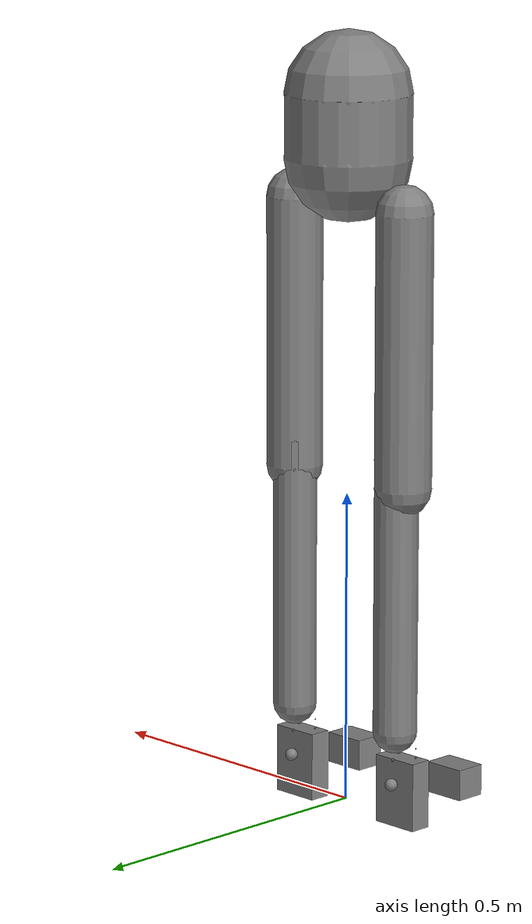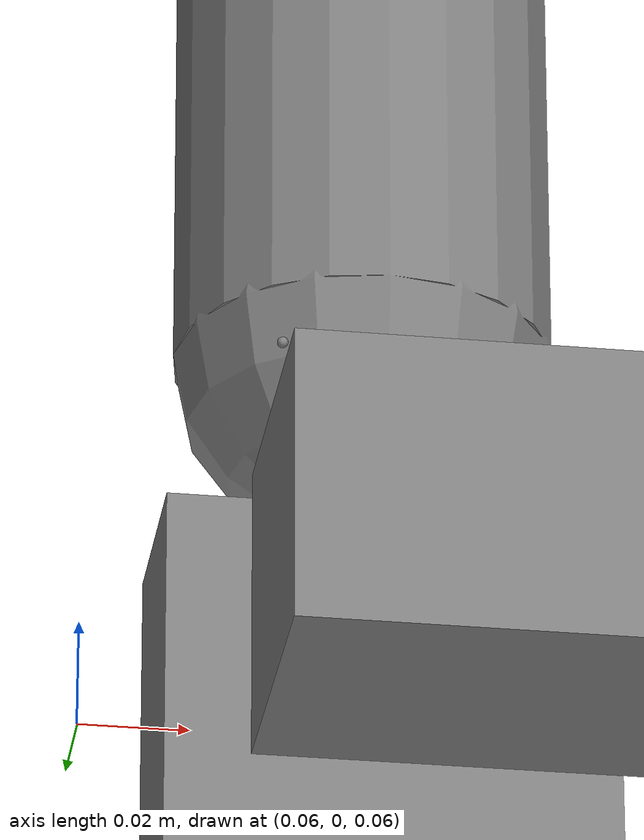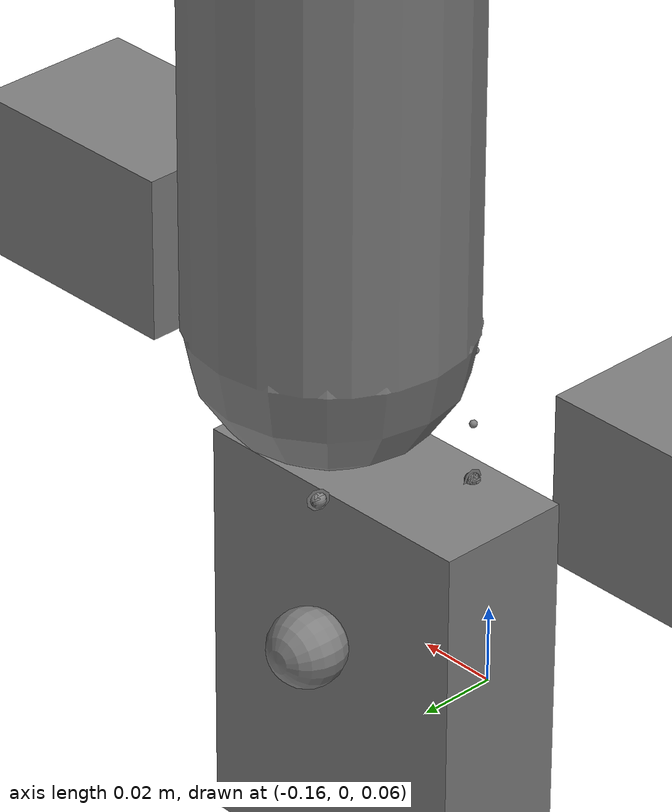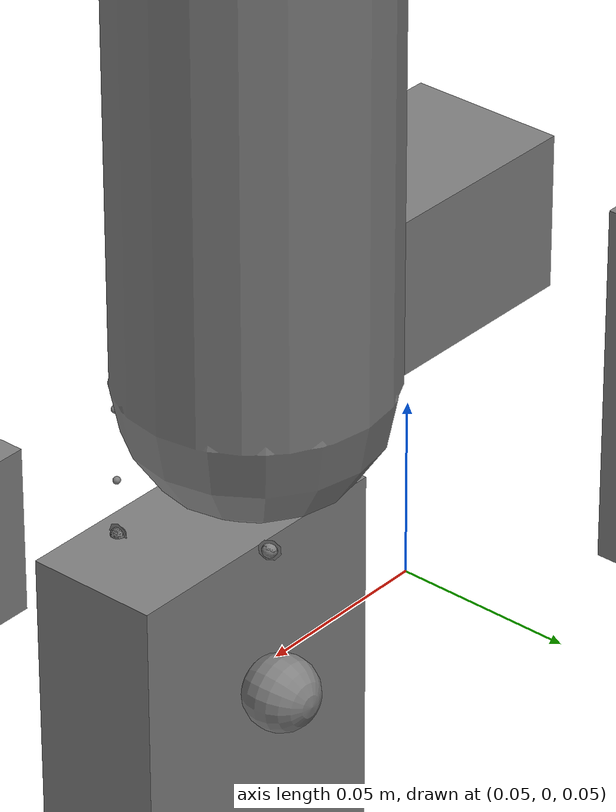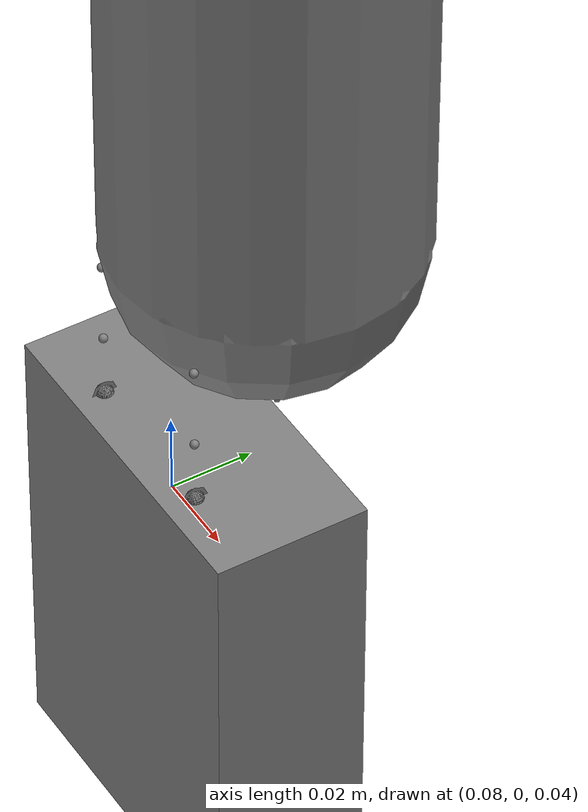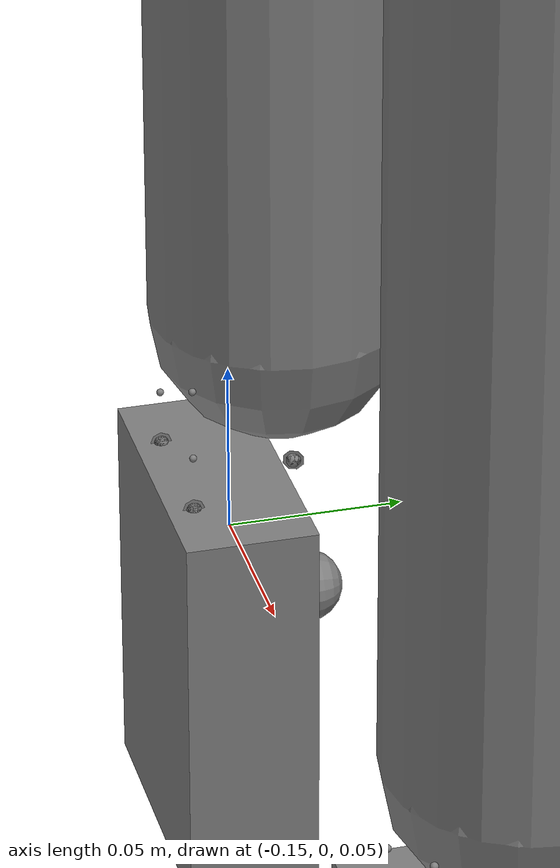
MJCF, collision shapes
<?xml version='1.0' encoding='utf-8'?>
<mujoco model="assets">
  <compiler angle="radian" />
  <!-- === Parameters === -->
  <include file="params/default_classes.xml" />
  <include file="params/materials.xml" />
  <!-- === Geometry === -->
  <include file="geometry/meshes.xml" />
  <!-- Note: world.xml removed - Isaac Lab creates ground in scene config -->
  <include file="geometry/robot.xml" />
  <!-- === Constraints === -->
  <include file="equality.xml" />
  <include file="tendon.xml" />
  <!-- === Modules === -->
  <include file="actuators.xml" />
  <include file="sensors.xml" />
  <include file="contact_exclude.xml" />
</mujoco>

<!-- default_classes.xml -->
<mujoco>
  <!-- Default classes -->
  <visual>
    <quality shadowsize="4096" />
  </visual>

  <default>
    <default class="robot">
      <default class="motor">
        <!-- 主要运动关节：hip, knee -->
        <joint damping="0.5" armature="0.01" frictionloss="0.1"
          solreflimit="0.005 1" solimplimit="0.95 0.99 0.001" />
        <motor ctrllimited="true" ctrlrange="-1 1" />
      </default>
      <default class="ankle_motor">
        <!-- Three DOF 并联结构 -->
        <!-- 踝关节由 tendon 约束 -->
        <joint />
        <motor />
      </default>
      <default class="toe_motor">
        <!-- 脚趾关节：中等阻尼 -->
        <joint damping="0.2" armature="0.005" frictionloss="0.05"
          solreflimit="0.005 1" solimplimit="0.95 0.99 0.001" />
        <motor ctrllimited="true" ctrlrange="-1 1" />
      </default>
      <default class="visual">
        <!-- 视觉几何：不参与碰撞 -->
        <geom contype="0" conaffinity="0" group="2" />
      </default>
      <default class="collision">
        <!-- 躯干/髋部碰撞：组8，只碰撞地面(1) -->
        <geom condim="3" contype="8" conaffinity="1" priority="1" group="1" solref="0.005 1"
          solimp="0.99 0.999 1e-05" friction="1 0.01 0.01" mass="0" />
      </default>
      <default class="right_leg_collision">
        <!-- 右腿主体碰撞：组2，碰撞地面(1)和左腿(4) -->
        <geom condim="3" contype="2" conaffinity="5" priority="1" group="1" solref="0.005 1"
          solimp="0.99 0.999 1e-05" friction="1 0.01 0.01" mass="0" />
      </default>
      <default class="left_leg_collision">
        <!-- 左腿主体碰撞：组4，碰撞地面(1)和右腿(2) -->
        <geom condim="3" contype="4" conaffinity="3" priority="1" group="1" solref="0.005 1"
          solimp="0.99 0.999 1e-05" friction="1 0.01 0.01" mass="0" />
      </default>
      <default class="right_leg_minor_collision">
        <!-- 右腿细小部件（ankle）：组16，只碰撞地面(1) -->
        <geom condim="3" contype="16" conaffinity="1" priority="1" group="1" solref="0.005 1"
          solimp="0.99 0.999 1e-05" friction="1 0.01 0.01" mass="0" />
      </default>
      <default class="left_leg_minor_collision">
        <!-- 左腿细小部件（ankle）：组32，只碰撞地面(1) -->
        <geom condim="3" contype="32" conaffinity="1" priority="1" group="1" solref="0.005 1"
          solimp="0.99 0.999 1e-05" friction="1 0.01 0.01" mass="0" />
      </default>
      <default class="thigh_equality">
        <equality solref="0.001 1" solimp="0.99 0.999 0.0001" />
      </default>
    </default>
  </default>
</mujoco>

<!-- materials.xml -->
<mujoco>
  <!-- Materials -->
  <asset>
    <material name="ground" rgba="1 1 1 1" />
    <material name="default_material" rgba="0.7 0.7 0.7 1" />
    <material name="collision_material" rgba="1.0 0.28 0.1 0.9" />
  </asset>
</mujoco>

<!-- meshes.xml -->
<mujoco>
  <!-- Mesh assets extracted from jiyuan_fit.xml -->
  <asset>
    <mesh name="base_link.STL" file="../../../../meshes/base_link.STL" />
    <mesh name="right_hip_pitch_engine_link.STL" file="../../../../meshes/right_hip_pitch_engine_link.STL" />
    <mesh name="right_hip_yaw_engine_link.STL" file="../../../../meshes/right_hip_yaw_engine_link.STL" />
    <mesh name="right_hip_roll_link.STL" file="../../../../meshes/right_hip_roll_link.STL" />
    <mesh name="right_hip_cube_link.STL" file="../../../../meshes/right_hip_cube_link.STL" />
    <mesh name="right_thigh_link.STL" file="../../../../meshes/right_thigh_link.STL" />
    <mesh name="right_shin_link.STL" file="../../../../meshes/right_shin_link.STL" />
    <mesh name="right_ankle_1_3_link.STL" file="../../../../meshes/right_ankle_1_3_link.STL" />
    <mesh name="right_ankle_1_3_cube_link.STL" file="../../../../meshes/right_ankle_1_3_cube_link.STL" />
    <mesh name="right_ankle_1_3_page_link.STL" file="../../../../meshes/right_ankle_1_3_page_link.STL" />
    <mesh name="right_ankle_2_3_link.STL" file="../../../../meshes/right_ankle_2_3_link.STL" />
    <mesh name="right_ankle_2_3_cube_link.STL" file="../../../../meshes/right_ankle_2_3_cube_link.STL" />
    <mesh name="right_ankle_2_3_page_link.STL" file="../../../../meshes/right_ankle_2_3_page_link.STL" />
    <mesh name="right_ankle_3_3_link.STL" file="../../../../meshes/right_ankle_3_3_link.STL" />
    <mesh name="right_ankle_3_3_cube_link.STL" file="../../../../meshes/right_ankle_3_3_cube_link.STL" />
    <mesh name="right_ankle_3_3_page_link.STL" file="../../../../meshes/right_ankle_3_3_page_link.STL" />
    <mesh name="right_ankle_cube_link.STL" file="../../../../meshes/right_ankle_cube_link.STL" />
    <mesh name="right_ankle_axle_link.STL" file="../../../../meshes/right_ankle_axle_link.STL" />
    <mesh name="right_foot_link.STL" file="../../../../meshes/right_foot_link.STL" />
    <mesh name="right_toe_link.STL" file="../../../../meshes/right_toe_link.STL" />
    <mesh name="left_hip_pitch_engine_link.STL" file="../../../../meshes/left_hip_pitch_engine_link.STL" />
    <mesh name="left_hip_yaw_engine_link.STL" file="../../../../meshes/left_hip_yaw_engine_link.STL" />
    <mesh name="left_hip_roll_link.STL" file="../../../../meshes/left_hip_roll_link.STL" />
    <mesh name="left_hip_cube_link.STL" file="../../../../meshes/left_hip_cube_link.STL" />
    <mesh name="left_thigh_link.STL" file="../../../../meshes/left_thigh_link.STL" />
    <mesh name="left_shin_link.STL" file="../../../../meshes/left_shin_link.STL" />
    <mesh name="left_ankle_1_3_link.STL" file="../../../../meshes/left_ankle_1_3_link.STL" />
    <mesh name="left_ankle_1_3_cube_link.STL" file="../../../../meshes/left_ankle_1_3_cube_link.STL" />
    <mesh name="left_ankle_1_3_page_link.STL" file="../../../../meshes/left_ankle_1_3_page_link.STL" />
    <mesh name="left_ankle_2_3_link.STL" file="../../../../meshes/left_ankle_2_3_link.STL" />
    <mesh name="left_ankle_2_3_cube_link.STL" file="../../../../meshes/left_ankle_2_3_cube_link.STL" />
    <mesh name="left_ankle_2_3_page_link.STL" file="../../../../meshes/left_ankle_2_3_page_link.STL" />
    <mesh name="left_ankle_3_3_link.STL" file="../../../../meshes/left_ankle_3_3_link.STL" />
    <mesh name="left_ankle_3_3_cube_link.STL" file="../../../../meshes/left_ankle_3_3_cube_link.STL" />
    <mesh name="left_ankle_3_3_page_link.STL" file="../../../../meshes/left_ankle_3_3_page_link.STL" />
    <mesh name="left_ankle_cube_link.STL" file="../../../../meshes/left_ankle_cube_link.STL" />
    <mesh name="left_ankle_axle_link.STL" file="../../../../meshes/left_ankle_axle_link.STL" />
    <mesh name="left_foot_link.STL" file="../../../../meshes/left_foot_link.STL" />
    <mesh name="left_toe_link.STL" file="../../../../meshes/left_toe_link.STL" />

    <!-- Custom Collision Meshes -->
    <mesh name="toe_wedge" vertex="
      -0.035  0.025 -0.025
       0.035  0.025 -0.025
      -0.035  0.025  0.025
       0.035  0.025  0.025
      -0.035 -0.025 -0.025
       0.035 -0.025 -0.025
      -0.035 -0.025 -0.015
       0.035 -0.025 -0.015" />

    <mesh name="foot_wedge" vertex="
        -0.028  0.030 -0.048
         0.028  0.030 -0.048
        -0.028  0.030  0.064
         0.028  0.030  0.064
        -0.028 -0.030  0.064
         0.028 -0.030  0.064
        -0.028 -0.090 -0.028
         0.028 -0.090 -0.028
        -0.028 -0.090 -0.048
         0.028 -0.090 -0.048" />
  </asset>
</mujoco>

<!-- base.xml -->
<mujoco>
  <geom name="base_link_collision" type="capsule" fromto="0 0.04 0 0 0.14 0" size="0.10"
    class="collision" />
  <geom name="base_link_visual" pos="0 0 0" quat="1.0 0.0 0.0 0.0" type="mesh" mesh="base_link.STL"
    class="visual" />
  <site name="base_link_site" pos="0 0 0" quat="1 0 0 0" />
  <camera name="front_camera" mode="track" fovy="90.0"
    quat="4.329780281177467e-17 4.329780281177466e-17 0.7071067811865475 0.7071067811865476"
    pos="0.0 2.0 0.5" />
  <camera name="side_camera" mode="track" fovy="90.0"
    quat="-0.5 -0.4999999999999999 0.5 0.5000000000000001" pos="-2.0 0.0 0.5" />
</mujoco>

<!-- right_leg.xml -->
<mujoco>
  <body name="right_hip_pitch_engine_link" pos="-0.084333 2.46E-05 0" quat="1.0 0.0 0.0 0.0">
    <joint name="right_hip_pitch_engine_joint" type="hinge" ref="0.0" class="motor" range="-1.0 1.5"
      axis="0 0 1" />
    <inertial pos="-0.0132180319673854 -0.000409478998264526 -0.000337079988808422"
      quat="1.0 0.0 0.0 0.0" mass="0.00784384827917925"
      diaginertia="4.36590682410741e-06 5.12008779916659e-06 1.36310392622543e-06" />
    <geom name="right_hip_pitch_engine_link_collision" pos="0 0 0" quat="1.0 0.0 0.0 0.0"
      type="sphere" class="right_leg_minor_collision" size="0.001" contype="0" conaffinity="0" />
    <geom name="right_hip_pitch_engine_link_visual" pos="0 0 0" quat="1.0 0.0 0.0 0.0" type="mesh"
      mesh="right_hip_pitch_engine_link.STL" class="visual" />
  </body>
  <body name="right_hip_yaw_engine_link" pos="-0.084333 2.46E-05 0" quat="1.0 0.0 0.0 0.0">
    <joint name="right_hip_yaw_engine_joint" type="hinge" ref="0.0" class="motor" range="-1.0 1.0"
      axis="0 1 0" />
    <inertial pos="-0.00975037082028439 0.000335610218016511 0.000145803243278274"
      quat="1.0 0.0 0.0 0.0" mass="0.00721229273746498"
      diaginertia="3.40368793351683e-06 9.55584405344269e-07 3.82715081231712e-06" />
    <geom name="right_hip_yaw_engine_link_collision" pos="0 0 0" quat="1.0 0.0 0.0 0.0"
      type="sphere" class="right_leg_minor_collision" size="0.001" contype="0" conaffinity="0" />
    <geom name="right_hip_yaw_engine_link_visual" pos="0 0 0" quat="1.0 0.0 0.0 0.0" type="mesh"
      mesh="right_hip_yaw_engine_link.STL" class="visual" />
  </body>
  <body name="right_hip_roll_link" pos="-0.084333 2.46E-05 0" quat="1.0 0.0 0.0 0.0">
    <joint name="right_hip_roll_joint" type="hinge" ref="0.0" class="motor"
      range="-1.5707963267948966 1.5707963267948966" axis="1 0 0" />
    <inertial pos="0.0222625122554699 -4.28350421400515E-05 -2.24420624569832E-05"
      quat="1.0 0.0 0.0 0.0" mass="0.00398432706561057"
      diaginertia="1.88235287338231e-07 5.49391206748978e-07 5.05938324031621e-07" />
    <geom name="right_hip_roll_link_collision" pos="0 0 0" quat="1.0 0.0 0.0 0.0" type="sphere"
      class="right_leg_minor_collision" size="0.001" contype="0" conaffinity="0" />
    <geom name="right_hip_roll_link_visual" pos="0 0 0" quat="1.0 0.0 0.0 0.0" type="mesh"
      mesh="right_hip_roll_link.STL" class="visual" />
    <body name="right_hip_cube_link" pos="0 0 0" quat="1.0 0.0 0.0 0.0">
      <joint name="right_hip_cube_joint" type="hinge" ref="0.0" class="motor" range="-1.0 1.5"
        axis="0 0 1" />
      <inertial pos="-7.58236988473993E-09 -8.10037224742346E-14 8.6035271838651E-15"
        quat="1.0 0.0 0.0 0.0" mass="0.000245876972106248"
        diaginertia="4.25015788197772e-09 2.40441818298092e-09 2.40441192528711e-09" />
      <geom name="right_hip_cube_link_collision" pos="0 0 0" quat="1.0 0.0 0.0 0.0" type="sphere"
        class="right_leg_minor_collision" size="0.001" contype="0" conaffinity="0" />
      <geom name="right_hip_cube_link_visual" pos="0 0 0" quat="1.0 0.0 0.0 0.0" type="mesh"
        mesh="right_hip_cube_link.STL" class="visual" />
      <body name="right_thigh_link" pos="0 0 0" quat="1.0 0.0 0.0 0.0">
        <joint name="right_thigh_joint" type="hinge" ref="0.0" class="motor" range="-1.0 1.0"
          axis="0 1 0" />
        <inertial pos="-0.0353507257648988 -0.247894844440165 0.00178440950269929"
          quat="1.0 0.0 0.0 0.0" mass="0.807844023825405"
          diaginertia="0.00262872199337436 0.00181775503594599 0.00258154933740886" />
        <geom name="right_thigh_link_collision" pos="-0.035 -0.248 0.002" quat="0.7071 0.7071 0 0"
          type="capsule" class="right_leg_collision" size="0.045 0.215" />
        <geom name="right_thigh_link_visual" pos="0 0 0" quat="1.0 0.0 0.0 0.0" type="mesh"
          mesh="right_thigh_link.STL" class="visual" />
        <body name="right_shin_link" pos="-0.0324938548812839 -0.429595785329822 -0.011499999999998"
          quat="1.0 0.0 0.0 0.0">
          <joint name="right_knee_joint" type="hinge" ref="0.0" class="motor"
            range="-2.0943951023931953 0.0" axis="-1 0 0" />
          <inertial pos="0.00524376700949104 -0.205627168869245 0.00732812606870403"
            quat="1.0 0.0 0.0 0.0" mass="0.364323955321575"
            diaginertia="0.00132460554133456 0.000315850437296788 0.00134334443677415" />
          <geom name="right_shin_link_collision" pos="0.005 -0.206 0.007" quat="0.7071 0.7071 0 0"
            type="capsule" class="right_leg_collision" size="0.035 0.218" />
          <geom name="right_shin_link_visual" pos="0 0 0" quat="1.0 0.0 0.0 0.0" type="mesh"
            mesh="right_shin_link.STL" class="visual" />
          <body name="right_ankle_1_3_link"
            pos="0.00499998365963887 -0.435500013525673 0.00299999395255281" quat="1.0 0.0 0.0 0.0">
            <joint name="right_ankle_1_3_joint" type="hinge" ref="0.0" class="ankle_motor"
              range="-0.5235987755982988 0.5235987755982988" axis="0 0 1" />
            <inertial pos="-6.03425108214317E-08 -0.00133748853041993 0.000181477957767302"
              quat="1.0 0.0 0.0 0.0" mass="0.00262097004680966"
              diaginertia="8.99652249736952e-08 9.24849140747278e-08 1.40840739837435e-07" />
            <geom name="right_ankle_1_3_link_collision" pos="0 0 0" quat="1.0 0.0 0.0 0.0"
              type="sphere" class="right_leg_minor_collision" size="0.001" contype="0"
              conaffinity="0" />
            <geom name="right_ankle_1_3_link_visual" pos="0 0 0" quat="1.0 0.0 0.0 0.0" type="mesh"
              mesh="right_ankle_1_3_link.STL" class="visual" />
            <body name="right_ankle_1_3_cube_link" pos="0 0 0" quat="1.0 0.0 0.0 0.0">
              <joint name="right_ankle_1_3_cube_joint" type="hinge" ref="0.0" class="ankle_motor"
                range="-0.5235987755982988 0.5235987755982988" axis="0 -1 0" />
              <inertial pos="1.63396522423476E-08 -0.0170076971502238 1.27962296526257E-07"
                quat="1.0 0.0 0.0 0.0" mass="0.00141938195347877"
                diaginertia="2.85047557512365e-08 3.24387028605849e-08 3.91865632006432e-08" />
              <geom name="right_ankle_1_3_cube_link_collision" pos="0 0 0" quat="1.0 0.0 0.0 0.0"
                type="sphere" class="right_leg_minor_collision" size="0.001" contype="0"
                conaffinity="0" />
              <geom name="right_ankle_1_3_cube_link_visual" pos="0 0 0" quat="1.0 0.0 0.0 0.0"
                type="mesh" mesh="right_ankle_1_3_cube_link.STL" class="visual" />
              <body name="right_ankle_1_3_page_link" pos="0 -0.0199999864743267 0"
                quat="1.0 0.0 0.0 0.0">
                <site name="ankle_1_3_attach" pos="0 -0.0155 0" size="0.002" />
                <joint name="right_ankle_1_3_page_joint" type="hinge" ref="0.0" class="ankle_motor"
                  range="-0.5235987755982988 0.5235987755982988" axis="-1 0 0" />
                <inertial pos="-0.000120807831869477 -0.0207078096816944 4.90926743701436E-16"
                  quat="1.0 0.0 0.0 0.0" mass="0.00310095806973402"
                  diaginertia="6.607387135913e-07 1.0799072162633e-07 6.98721337032829e-07" />
                <geom name="right_ankle_1_3_page_link_collision" pos="0 0 0" quat="1.0 0.0 0.0 0.0"
                  type="sphere" class="right_leg_minor_collision" size="0.001" contype="0"
                  conaffinity="0" />
                <geom name="right_ankle_1_3_page_link_visual" pos="0 0 0" quat="1.0 0.0 0.0 0.0"
                  type="mesh" mesh="right_ankle_1_3_page_link.STL" class="visual" />
              </body>
            </body>
          </body>
          <body name="right_ankle_2_3_link"
            pos="-0.0136195625217264 -0.435500013525674 0.0352499939525529"
            quat="0.49999999999999667 5.913303551884552e-16 0.8660254037844406 5.913303551884552e-16">
            <joint name="right_ankle_2_3_joint" type="hinge" ref="0.0" class="ankle_motor"
              range="-0.5235987755982988 0.5235987755982988" axis="0 0 1" />
            <inertial pos="-9.00902660042058E-08 -0.00133748853041982 0.000181483037757071"
              quat="1.0 0.0 0.0 0.0" mass="0.00262097004680966"
              diaginertia="8.99652249736953e-08 9.24849140747277e-08 1.40840739837435e-07" />
            <geom name="right_ankle_2_3_link_collision" pos="0 0 0" quat="1.0 0.0 0.0 0.0"
              type="sphere" class="right_leg_minor_collision" size="0.001" contype="0"
              conaffinity="0" />
            <geom name="right_ankle_2_3_link_visual" pos="0 0 0" quat="1.0 0.0 0.0 0.0" type="mesh"
              mesh="right_ankle_2_3_link.STL" class="visual" />
            <body name="right_ankle_2_3_cube_link" pos="0 0 0" quat="1.0 0.0 0.0 0.0">
              <joint name="right_ankle_2_3_cube_joint" type="hinge" ref="0.0" class="ankle_motor"
                range="-0.5235987755982988 0.5235987755982988" axis="0 -1 0" />
              <inertial pos="-1.3408035869078E-08 -0.0170076970709049 1.33042210040402E-07"
                quat="1.0 0.0 0.0 0.0" mass="0.00141938194566218"
                diaginertia="2.85047550653728e-08 3.24387030714843e-08 3.91865625370975e-08" />
              <geom name="right_ankle_2_3_cube_link_collision" pos="0 0 0" quat="1.0 0.0 0.0 0.0"
                type="sphere" class="right_leg_minor_collision" size="0.001" contype="0"
                conaffinity="0" />
              <geom name="right_ankle_2_3_cube_link_visual" pos="0 0 0" quat="1.0 0.0 0.0 0.0"
                type="mesh" mesh="right_ankle_2_3_cube_link.STL" class="visual" />
              <body name="right_ankle_2_3_page_link" pos="0 -0.0199999864743262 0"
                quat="1.0 0.0 0.0 0.0">
                <site name="ankle_2_3_attach" pos="0 -0.0155 0" size="0.002" />
                <joint name="right_ankle_2_3_page_joint" type="hinge" ref="0.0" class="ankle_motor"
                  range="-0.5235987755982988 0.5235987755982988" axis="1 0 0" />
                <inertial pos="-0.000120807831848452 -0.0207078096816944 -1.45994327738208E-14"
                  quat="1.0 0.0 0.0 0.0" mass="0.00310095806973403"
                  diaginertia="6.60738713591303e-07 1.0799072162633e-07 6.98721337032832e-07" />
                <geom name="right_ankle_2_3_page_link_collision" pos="0 0 0" quat="1.0 0.0 0.0 0.0"
                  type="sphere" class="right_leg_minor_collision" size="0.001" contype="0"
                  conaffinity="0" />
                <geom name="right_ankle_2_3_page_link_visual" pos="0 0 0" quat="1.0 0.0 0.0 0.0"
                  type="mesh" mesh="right_ankle_2_3_page_link.STL" class="visual" />
              </body>
            </body>
          </body>
          <body name="right_ankle_3_3_link"
            pos="0.0236195298410044 -0.435500013525674 0.0352499939525526"
            quat="0.5000000000000053 2.4606315772327272e-15 -0.8660254037844356 -2.4606315772327272e-15">
            <joint name="right_ankle_3_3_joint" type="hinge" ref="0.0" class="ankle_motor"
              range="-0.5235987755982988 0.5235987755982988" axis="0 0 1" />
            <inertial pos="-7.96157886978621E-08 -0.00133748853042004 0.000181454735450504"
              quat="1.0 0.0 0.0 0.0" mass="0.00262097004680966"
              diaginertia="8.99652249736953e-08 9.24849140747277e-08 1.40840739837435e-07" />
            <geom name="right_ankle_3_3_link_collision" pos="0 0 0" quat="1.0 0.0 0.0 0.0"
              type="sphere" class="right_leg_minor_collision" size="0.001" contype="0"
              conaffinity="0" />
            <geom name="right_ankle_3_3_link_visual" pos="0 0 0" quat="1.0 0.0 0.0 0.0" type="mesh"
              mesh="right_ankle_3_3_link.STL" class="visual" />
            <body name="right_ankle_3_3_cube_link" pos="0 0 0" quat="1.0 0.0 0.0 0.0">
              <joint name="right_ankle_3_3_cube_joint" type="hinge" ref="0.0" class="ankle_motor"
                range="-0.5235987755982988 0.5235987755982988" axis="0 -1 0" />
              <inertial pos="-2.93355850722321E-09 -0.017007697070905 1.0473990350035E-07"
                quat="1.0 0.0 0.0 0.0" mass="0.0014193819456622"
                diaginertia="2.85047550653734e-08 3.24387030714847e-08 3.9186562537098e-08" />
              <geom name="right_ankle_3_3_cube_link_collision" pos="0 0 0" quat="1.0 0.0 0.0 0.0"
                type="sphere" class="right_leg_minor_collision" size="0.001" contype="0"
                conaffinity="0" />
              <geom name="right_ankle_3_3_cube_link_visual" pos="0 0 0" quat="1.0 0.0 0.0 0.0"
                type="mesh" mesh="right_ankle_3_3_cube_link.STL" class="visual" />
              <body name="right_ankle_3_3_page_link" pos="0 -0.0199999864743241 0"
                quat="1.0 0.0 0.0 0.0">
                <site name="ankle_3_3_attach" pos="0 -0.0155 0" size="0.002" />
                <joint name="right_ankle_3_3_page_joint" type="hinge" ref="0.0" class="ankle_motor"
                  range="-0.5235987755982988 0.5235987755982988" axis="1 0 0" />
                <inertial pos="-0.000120807831853642 -0.0207078096816969 5.55111512312578E-17"
                  quat="1.0 0.0 0.0 0.0" mass="0.00310095806973405"
                  diaginertia="6.60738713591306e-07 1.07990721626331e-07 6.98721337032834e-07" />
                <geom name="right_ankle_3_3_page_link_collision" pos="0 0 0" quat="1.0 0.0 0.0 0.0"
                  type="sphere" class="right_leg_minor_collision" size="0.001" contype="0"
                  conaffinity="0" />
                <geom name="right_ankle_3_3_page_link_visual" pos="0 0 0" quat="1.0 0.0 0.0 0.0"
                  type="mesh" mesh="right_ankle_3_3_page_link.STL" class="visual" />
              </body>
            </body>
          </body>
          <body name="right_ankle_cube_link"
            pos="0.00500000000000023 -0.451000010144081 0.0244999999999944" quat="1.0 0.0 0.0 0.0">
            <joint name="right_ankle_cube_joint" type="hinge" ref="0.0" class="ankle_motor"
              range="-0.5235987755982988 0.5235987755982988" axis="0 0 1" />
            <inertial pos="-1.70141678523805E-14 6.8171273071016E-09 6.59194920871187E-16"
              quat="1.0 0.0 0.0 0.0" mass="0.000189328304341634"
              diaginertia="1.15268360237196e-09 1.81031848738357e-09 1.15268986006576e-09" />
            <geom name="right_ankle_cube_link_collision" pos="0 0 0" quat="1.0 0.0 0.0 0.0"
              type="sphere" class="right_leg_minor_collision" size="0.001" contype="0"
              conaffinity="0" />
            <geom name="right_ankle_cube_link_visual" pos="0 0 0" quat="1.0 0.0 0.0 0.0" type="mesh"
              mesh="right_ankle_cube_link.STL" class="visual" />
            <body name="right_ankle_axle_link" pos="0 0 0" quat="1.0 0.0 0.0 0.0">
              <joint name="right_ankle_axle_joint" type="hinge" ref="0.0" class="ankle_motor"
                range="-0.5235987755982988 0.5235987755982988" axis="1 0 0" />
              <inertial pos="-6.9218348313152E-05 -0.0250913880795 7.51390485273767E-05"
                quat="1.0 0.0 0.0 0.0" mass="0.0018856554715005"
                diaginertia="3.40888279036599e-07 1.59411270300711e-08 3.43002681791167e-07" />
              <geom name="right_ankle_axle_link_collision" pos="0 0 0" quat="1.0 0.0 0.0 0.0"
                type="sphere" class="right_leg_minor_collision" size="0.001" contype="0"
                conaffinity="0" />
              <geom name="right_ankle_axle_link_visual" pos="0 0 0" quat="1.0 0.0 0.0 0.0"
                type="mesh" mesh="right_ankle_axle_link.STL" class="visual" />
              <body name="right_foot_link" pos="0 -0.019999989834798 0" quat="1.0 0.0 0.0 0.0">
                <joint name="right_foot_joint" type="hinge" ref="0.0" class="ankle_motor"
                  range="-0.5235987755982988 0.5235987755982988" axis="0 -1 0" />
                <inertial pos="0.000486880895239197 -0.0526281483167862 0.00254809224659175"
                  quat="1.0 0.0 0.0 0.0" mass="0.17435588732169"
                  diaginertia="0.00031919178724649 0.000287599095065989 0.000162719053023517" />

                <site name="right_foot_touch_site" pos="0 -0.04 -0.025" size="0.01" />

                <geom name="right_foot_link_collision" pos="0 -0.055 0" quat="1.0 0.0 0.0 0.0"
                  type="box" class="right_leg_collision" size="0.04 0.055 0.018" />
                <geom name="right_foot_link_visual" pos="0 0 0" quat="1.0 0.0 0.0 0.0" type="mesh"
                  mesh="right_foot_link.STL" class="visual" />
                <body name="right_toe_link" pos="0 -0.0758129417355203 0.0950624781069581"
                  quat="1.0 0.0 0.0 0.0">

                  <joint name="right_toe_joint" type="hinge" ref="0.0" class="toe_motor"
                    range="-0.47123889803846897 0.1" axis="1 0 0" />
                  <inertial pos="0.00107157681259222 0.00248698065656139 0.0210804258839141"
                    quat="1.0 0.0 0.0 0.0" mass="0.0528820880759984"
                    diaginertia="3.25172603856275e-05 5.35541278237666e-05 3.36976037536302e-05" />

                  <site name="right_toe_touch_site" pos="0 0.03 0.015" size="0.01" />

                  <geom name="right_toe_link_collision" pos="0 0.015 0.025" quat="1.0 0.0 0.0 0.0"
                    type="box" class="right_leg_collision" size="0.035 0.025 0.025" />
                  <geom name="right_toe_link_visual" pos="0 0 0" quat="1.0 0.0 0.0 0.0" type="mesh"
                    mesh="right_toe_link.STL" class="visual" />
                </body>
                <site name="foot_attach_1" pos="-0.00000 0.00000 -0.02150" size="0.002" />
                <site name="foot_attach_2" pos="-0.01862 0.00000  0.01075" size="0.002" />
                <site name="foot_attach_3" pos=" 0.01862 0.00000  0.01075" size="0.002" />
              </body>
            </body>
          </body>
        </body>
      </body>
    </body>
  </body>
</mujoco>

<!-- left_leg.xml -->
<mujoco>
  <body name="left_hip_pitch_engine_link" pos="0.08433300 0.00002460 0.00000000"
    quat="1.00000000 0.00000000 -0.00000000 -0.00000000">
    <joint name="left_hip_pitch_engine_joint" type="hinge" ref="0.0" class="motor" range="-1.5 1.0"
      axis="-0.00000000 0.00000000 1.00000000" />
    <inertial pos="0.01321803 -0.00040948 -0.00033708"
      quat="1.00000000 0.00000000 -0.00000000 -0.00000000" mass="0.00784384827917925"
      diaginertia="4.36590682410741e-06 5.12008779916659e-06 1.36310392622543e-06" />
    <geom name="left_hip_pitch_engine_link_collision" pos="-0.00000000 0.00000000 0.00000000"
      quat="1.00000000 0.00000000 -0.00000000 -0.00000000" type="sphere"
      class="left_leg_minor_collision" size="0.001" contype="0" conaffinity="0" />
    <geom name="left_hip_pitch_engine_link_visual" pos="-0.00000000 0.00000000 0.00000000"
      quat="1.00000000 0.00000000 -0.00000000 -0.00000000" type="mesh"
      mesh="left_hip_pitch_engine_link.STL" class="visual" />
  </body>
  <body name="left_hip_yaw_engine_link" pos="0.08433300 0.00002460 0.00000000"
    quat="1.00000000 0.00000000 -0.00000000 -0.00000000">
    <joint name="left_hip_yaw_engine_joint" type="hinge" ref="0.0" class="motor" range="-1.0 1.0"
      axis="-0.00000000 1.00000000 0.00000000" />
    <inertial pos="0.00975037 0.00033561 0.00014580"
      quat="1.00000000 0.00000000 -0.00000000 -0.00000000" mass="0.00721229273746498"
      diaginertia="3.40368793351683e-06 9.55584405344269e-07 3.82715081231712e-06" />
    <geom name="left_hip_yaw_engine_link_collision" pos="-0.00000000 0.00000000 0.00000000"
      quat="1.00000000 0.00000000 -0.00000000 -0.00000000" type="sphere"
      class="left_leg_minor_collision" size="0.001" contype="0" conaffinity="0" />
    <geom name="left_hip_yaw_engine_link_visual" pos="-0.00000000 0.00000000 0.00000000"
      quat="1.00000000 0.00000000 -0.00000000 -0.00000000" type="mesh"
      mesh="left_hip_yaw_engine_link.STL" class="visual" />
  </body>
  <body name="left_hip_roll_link" pos="0.08433300 0.00002460 0.00000000"
    quat="1.00000000 0.00000000 -0.00000000 -0.00000000">
    <joint name="left_hip_roll_joint" type="hinge" ref="0.0" class="motor"
      range="-1.5707963267948966 1.5707963267948966" axis="-1.00000000 0.00000000 0.00000000" />
    <inertial pos="-0.02226251 -0.00004284 -0.00002244"
      quat="1.00000000 0.00000000 -0.00000000 -0.00000000" mass="0.00398432706561057"
      diaginertia="1.88235287338231e-07 5.49391206748978e-07 5.05938324031621e-07" />
    <geom name="left_hip_roll_link_collision" pos="-0.00000000 0.00000000 0.00000000"
      quat="1.00000000 0.00000000 -0.00000000 -0.00000000" type="sphere"
      class="left_leg_minor_collision" size="0.001" contype="0" conaffinity="0" />
    <geom name="left_hip_roll_link_visual" pos="-0.00000000 0.00000000 0.00000000"
      quat="1.00000000 0.00000000 -0.00000000 -0.00000000" type="mesh" mesh="left_hip_roll_link.STL"
      class="visual" />
    <body name="left_hip_cube_link" pos="-0.00000000 0.00000000 0.00000000"
      quat="1.00000000 0.00000000 -0.00000000 -0.00000000">
      <joint name="left_hip_cube_joint" type="hinge" ref="0.0" class="motor" range="-1.5 1.0"
        axis="-0.00000000 0.00000000 1.00000000" />
      <inertial pos="0.00000001 -0.00000000 0.00000000"
        quat="1.00000000 0.00000000 -0.00000000 -0.00000000" mass="0.000245876972106248"
        diaginertia="4.25015788197772e-09 2.40441818298092e-09 2.40441192528711e-09" />
      <geom name="left_hip_cube_link_collision" pos="-0.00000000 0.00000000 0.00000000"
        quat="1.00000000 0.00000000 -0.00000000 -0.00000000" type="sphere"
        class="left_leg_minor_collision" size="0.001" contype="0" conaffinity="0" />
      <geom name="left_hip_cube_link_visual" pos="-0.00000000 0.00000000 0.00000000"
        quat="1.00000000 0.00000000 -0.00000000 -0.00000000" type="mesh"
        mesh="left_hip_cube_link.STL" class="visual" />
      <body name="left_thigh_link" pos="-0.00000000 0.00000000 0.00000000"
        quat="1.00000000 0.00000000 -0.00000000 -0.00000000">
        <joint name="left_thigh_joint" type="hinge" ref="0.0" class="motor" range="-1.0 1.0"
          axis="-0.00000000 1.00000000 0.00000000" />
        <inertial pos="0.03535073 -0.24789484 0.00178441"
          quat="1.00000000 0.00000000 -0.00000000 -0.00000000" mass="0.807844023825405"
          diaginertia="0.00262872199337436 0.00181775503594599 0.00258154933740886" />
        <geom name="left_thigh_link_collision" pos="0.035 -0.248 0.002" quat="0.7071 0.7071 0 0"
          type="capsule" class="left_leg_collision" size="0.045 0.215" />
        <geom name="left_thigh_link_visual" pos="-0.00000000 0.00000000 0.00000000"
          quat="1.00000000 0.00000000 -0.00000000 -0.00000000" type="mesh"
          mesh="left_thigh_link.STL" class="visual" />
        <body name="left_shin_link" pos="0.03249385 -0.42959579 -0.01150000"
          quat="1.00000000 0.00000000 -0.00000000 -0.00000000">
          <joint name="left_knee_joint" type="hinge" ref="0.0" class="motor"
            range="0.0 2.0943951023931953" axis="1.00000000 0.00000000 0.00000000" />
          <inertial pos="-0.00524377 -0.20562717 0.00732813"
            quat="1.00000000 0.00000000 -0.00000000 -0.00000000" mass="0.364323955321575"
            diaginertia="0.00132460554133456 0.000315850437296788 0.00134334443677415" />
          <geom name="left_shin_link_collision" pos="-0.005 -0.206 0.007" quat="0.7071 0.7071 0 0"
            type="capsule" class="left_leg_collision" size="0.035 0.218" />
          <geom name="left_shin_link_visual" pos="-0.00000000 0.00000000 0.00000000"
            quat="1.00000000 0.00000000 -0.00000000 -0.00000000" type="mesh"
            mesh="left_shin_link.STL" class="visual" />
          <body name="left_ankle_1_3_link" pos="-0.00499998 -0.43550001 0.00299999"
            quat="1.00000000 0.00000000 -0.00000000 -0.00000000">
            <joint name="left_ankle_1_3_joint" type="hinge" ref="0.0" class="ankle_motor"
              range="-0.5235987755982988 0.5235987755982988"
              axis="-0.00000000 0.00000000 1.00000000" />
            <inertial pos="0.00000006 -0.00133749 0.00018148"
              quat="1.00000000 0.00000000 -0.00000000 -0.00000000" mass="0.00262097004680966"
              diaginertia="8.99652249736952e-08 9.24849140747278e-08 1.40840739837435e-07" />
            <geom name="left_ankle_1_3_link_collision" pos="-0.00000000 0.00000000 0.00000000"
              quat="1.00000000 0.00000000 -0.00000000 -0.00000000" type="sphere"
              class="left_leg_minor_collision" size="0.001" contype="0" conaffinity="0" />
            <geom name="left_ankle_1_3_link_visual" pos="-0.00000000 0.00000000 0.00000000"
              quat="1.00000000 0.00000000 -0.00000000 -0.00000000" type="mesh"
              mesh="left_ankle_1_3_link.STL" class="visual" />
            <body name="left_ankle_1_3_cube_link" pos="-0.00000000 0.00000000 0.00000000"
              quat="1.00000000 0.00000000 -0.00000000 -0.00000000">
              <joint name="left_ankle_1_3_cube_joint" type="hinge" ref="0.0" class="ankle_motor"
                range="-0.5235987755982988 0.5235987755982988"
                axis="-0.00000000 -1.00000000 0.00000000" />
              <inertial pos="-0.00000002 -0.01700770 0.00000013"
                quat="1.00000000 0.00000000 -0.00000000 -0.00000000" mass="0.00141938195347877"
                diaginertia="2.85047557512365e-08 3.24387028605849e-08 3.91865632006432e-08" />
              <geom name="left_ankle_1_3_cube_link_collision"
                pos="-0.00000000 0.00000000 0.00000000"
                quat="1.00000000 0.00000000 -0.00000000 -0.00000000" type="sphere"
                class="left_leg_minor_collision" size="0.001" contype="0" conaffinity="0" />
              <geom name="left_ankle_1_3_cube_link_visual" pos="-0.00000000 0.00000000 0.00000000"
                quat="1.00000000 0.00000000 -0.00000000 -0.00000000" type="mesh"
                mesh="left_ankle_1_3_cube_link.STL" class="visual" />
              <body name="left_ankle_1_3_page_link" pos="-0.00000000 -0.01999999 0.00000000"
                quat="1.00000000 0.00000000 -0.00000000 -0.00000000">
                <site name="left_ankle_1_3_attach" pos="0 -0.0155 0" size="0.002" />
                <joint name="left_ankle_1_3_page_joint" type="hinge" ref="0.0" class="ankle_motor"
                  range="-0.5235987755982988 0.5235987755982988"
                  axis="1.00000000 0.00000000 0.00000000" />
                <inertial pos="0.00012081 -0.02070781 0.00000000"
                  quat="1.00000000 0.00000000 -0.00000000 -0.00000000" mass="0.00310095806973402"
                  diaginertia="6.607387135913e-07 1.0799072162633e-07 6.98721337032829e-07" />
                <geom name="left_ankle_1_3_page_link_collision"
                  pos="-0.00000000 0.00000000 0.00000000"
                  quat="1.00000000 0.00000000 -0.00000000 -0.00000000" type="sphere"
                  class="left_leg_minor_collision" size="0.001" contype="0" conaffinity="0" />
                <geom name="left_ankle_1_3_page_link_visual" pos="-0.00000000 0.00000000 0.00000000"
                  quat="1.00000000 0.00000000 -0.00000000 -0.00000000" type="mesh"
                  mesh="left_ankle_1_3_page_link.STL" class="visual" />
              </body>
            </body>
          </body>
          <body name="left_ankle_2_3_link" pos="0.01361956 -0.43550001 0.03524999"
            quat="0.50000000 0.00000000 -0.86602540 -0.00000000">
            <joint name="left_ankle_2_3_joint" type="hinge" ref="0.0" class="ankle_motor"
              range="-0.5235987755982988 0.5235987755982988"
              axis="-0.00000000 0.00000000 1.00000000" />
            <inertial pos="0.00000009 -0.00133749 0.00018148"
              quat="1.00000000 0.00000000 -0.00000000 -0.00000000" mass="0.00262097004680966"
              diaginertia="8.99652249736953e-08 9.24849140747277e-08 1.40840739837435e-07" />
            <geom name="left_ankle_2_3_link_collision" pos="-0.00000000 0.00000000 0.00000000"
              quat="1.00000000 0.00000000 -0.00000000 -0.00000000" type="sphere"
              class="left_leg_minor_collision" size="0.001" contype="0" conaffinity="0" />
            <geom name="left_ankle_2_3_link_visual" pos="-0.00000000 0.00000000 0.00000000"
              quat="1.00000000 0.00000000 -0.00000000 -0.00000000" type="mesh"
              mesh="left_ankle_2_3_link.STL" class="visual" />
            <body name="left_ankle_2_3_cube_link" pos="-0.00000000 0.00000000 0.00000000"
              quat="1.00000000 0.00000000 -0.00000000 -0.00000000">
              <joint name="left_ankle_2_3_cube_joint" type="hinge" ref="0.0" class="ankle_motor"
                range="-0.5235987755982988 0.5235987755982988"
                axis="-0.00000000 -1.00000000 0.00000000" />
              <inertial pos="0.00000001 -0.01700770 0.00000013"
                quat="1.00000000 0.00000000 -0.00000000 -0.00000000" mass="0.00141938194566218"
                diaginertia="2.85047550653728e-08 3.24387030714843e-08 3.91865625370975e-08" />
              <geom name="left_ankle_2_3_cube_link_collision"
                pos="-0.00000000 0.00000000 0.00000000"
                quat="1.00000000 0.00000000 -0.00000000 -0.00000000" type="sphere"
                class="left_leg_minor_collision" size="0.001" contype="0" conaffinity="0" />
              <geom name="left_ankle_2_3_cube_link_visual" pos="-0.00000000 0.00000000 0.00000000"
                quat="1.00000000 0.00000000 -0.00000000 -0.00000000" type="mesh"
                mesh="left_ankle_2_3_cube_link.STL" class="visual" />
              <body name="left_ankle_2_3_page_link" pos="-0.00000000 -0.01999999 0.00000000"
                quat="1.00000000 0.00000000 -0.00000000 -0.00000000">
                <site name="left_ankle_2_3_attach" pos="0 -0.0155 0" size="0.002" />
                <joint name="left_ankle_2_3_page_joint" type="hinge" ref="0.0" class="ankle_motor"
                  range="-0.5235987755982988 0.5235987755982988"
                  axis="-1.00000000 0.00000000 0.00000000" />
                <inertial pos="0.00012081 -0.02070781 -0.00000000"
                  quat="1.00000000 0.00000000 -0.00000000 -0.00000000" mass="0.00310095806973403"
                  diaginertia="6.60738713591303e-07 1.0799072162633e-07 6.98721337032832e-07" />
                <geom name="left_ankle_2_3_page_link_collision"
                  pos="-0.00000000 0.00000000 0.00000000"
                  quat="1.00000000 0.00000000 -0.00000000 -0.00000000" type="sphere"
                  class="left_leg_minor_collision" size="0.001" contype="0" conaffinity="0" />
                <geom name="left_ankle_2_3_page_link_visual" pos="-0.00000000 0.00000000 0.00000000"
                  quat="1.00000000 0.00000000 -0.00000000 -0.00000000" type="mesh"
                  mesh="left_ankle_2_3_page_link.STL" class="visual" />
              </body>
            </body>
          </body>
          <body name="left_ankle_3_3_link" pos="-0.02361953 -0.43550001 0.03524999"
            quat="0.50000000 0.00000000 0.86602540 0.00000000">
            <joint name="left_ankle_3_3_joint" type="hinge" ref="0.0" class="ankle_motor"
              range="-0.5235987755982988 0.5235987755982988"
              axis="-0.00000000 0.00000000 1.00000000" />
            <inertial pos="0.00000008 -0.00133749 0.00018145"
              quat="1.00000000 0.00000000 -0.00000000 -0.00000000" mass="0.00262097004680966"
              diaginertia="8.99652249736953e-08 9.24849140747277e-08 1.40840739837435e-07" />
            <geom name="left_ankle_3_3_link_collision" pos="-0.00000000 0.00000000 0.00000000"
              quat="1.00000000 0.00000000 -0.00000000 -0.00000000" type="sphere"
              class="left_leg_minor_collision" size="0.001" contype="0" conaffinity="0" />
            <geom name="left_ankle_3_3_link_visual" pos="-0.00000000 0.00000000 0.00000000"
              quat="1.00000000 0.00000000 -0.00000000 -0.00000000" type="mesh"
              mesh="left_ankle_3_3_link.STL" class="visual" />
            <body name="left_ankle_3_3_cube_link" pos="-0.00000000 0.00000000 0.00000000"
              quat="1.00000000 0.00000000 -0.00000000 -0.00000000">
              <joint name="left_ankle_3_3_cube_joint" type="hinge" ref="0.0" class="ankle_motor"
                range="-0.5235987755982988 0.5235987755982988"
                axis="-0.00000000 -1.00000000 0.00000000" />
              <inertial pos="0.00000000 -0.01700770 0.00000010"
                quat="1.00000000 0.00000000 -0.00000000 -0.00000000" mass="0.0014193819456622"
                diaginertia="2.85047550653734e-08 3.24387030714847e-08 3.9186562537098e-08" />
              <geom name="left_ankle_3_3_cube_link_collision"
                pos="-0.00000000 0.00000000 0.00000000"
                quat="1.00000000 0.00000000 -0.00000000 -0.00000000" type="sphere"
                class="left_leg_minor_collision" size="0.001" contype="0" conaffinity="0" />
              <geom name="left_ankle_3_3_cube_link_visual" pos="-0.00000000 0.00000000 0.00000000"
                quat="1.00000000 0.00000000 -0.00000000 -0.00000000" type="mesh"
                mesh="left_ankle_3_3_cube_link.STL" class="visual" />
              <body name="left_ankle_3_3_page_link" pos="-0.00000000 -0.01999999 0.00000000"
                quat="1.00000000 0.00000000 -0.00000000 -0.00000000">
                <site name="left_ankle_3_3_attach" pos="0 -0.0155 0" size="0.002" />
                <joint name="left_ankle_3_3_page_joint" type="hinge" ref="0.0" class="ankle_motor"
                  range="-0.5235987755982988 0.5235987755982988"
                  axis="-1.00000000 0.00000000 0.00000000" />
                <inertial pos="0.00012081 -0.02070781 0.00000000"
                  quat="1.00000000 0.00000000 -0.00000000 -0.00000000" mass="0.00310095806973405"
                  diaginertia="6.60738713591306e-07 1.07990721626331e-07 6.98721337032834e-07" />
                <geom name="left_ankle_3_3_page_link_collision"
                  pos="-0.00000000 0.00000000 0.00000000"
                  quat="1.00000000 0.00000000 -0.00000000 -0.00000000" type="sphere"
                  class="left_leg_minor_collision" size="0.001" contype="0" conaffinity="0" />
                <geom name="left_ankle_3_3_page_link_visual" pos="-0.00000000 0.00000000 0.00000000"
                  quat="1.00000000 0.00000000 -0.00000000 -0.00000000" type="mesh"
                  mesh="left_ankle_3_3_page_link.STL" class="visual" />
              </body>
            </body>
          </body>
          <body name="left_ankle_cube_link" pos="-0.00500000 -0.45100001 0.02450000"
            quat="1.00000000 0.00000000 -0.00000000 -0.00000000">
            <joint name="left_ankle_cube_joint" type="hinge" ref="0.0" class="ankle_motor"
              range="-0.5235987755982988 0.5235987755982988"
              axis="-0.00000000 0.00000000 1.00000000" />
            <inertial pos="0.00000000 0.00000001 0.00000000"
              quat="1.00000000 0.00000000 -0.00000000 -0.00000000" mass="0.000189328304341634"
              diaginertia="1.15268360237196e-09 1.81031848738357e-09 1.15268986006576e-09" />
            <geom name="left_ankle_cube_link_collision" pos="-0.00000000 0.00000000 0.00000000"
              quat="1.00000000 0.00000000 -0.00000000 -0.00000000" type="sphere"
              class="left_leg_minor_collision" size="0.001" contype="0" conaffinity="0" />
            <geom name="left_ankle_cube_link_visual" pos="-0.00000000 0.00000000 0.00000000"
              quat="1.00000000 0.00000000 -0.00000000 -0.00000000" type="mesh"
              mesh="left_ankle_cube_link.STL" class="visual" />
            <body name="left_ankle_axle_link" pos="-0.00000000 0.00000000 0.00000000"
              quat="1.00000000 0.00000000 -0.00000000 -0.00000000">
              <joint name="left_ankle_axle_joint" type="hinge" ref="0.0" class="ankle_motor"
                range="-0.5235987755982988 0.5235987755982988"
                axis="-1.00000000 0.00000000 0.00000000" />
              <inertial pos="0.00006922 -0.02509139 0.00007514"
                quat="1.00000000 0.00000000 -0.00000000 -0.00000000" mass="0.0018856554715005"
                diaginertia="3.40888279036599e-07 1.59411270300711e-08 3.43002681791167e-07" />
              <geom name="left_ankle_axle_link_collision" pos="-0.00000000 0.00000000 0.00000000"
                quat="1.00000000 0.00000000 -0.00000000 -0.00000000" type="sphere"
                class="left_leg_minor_collision" size="0.001" contype="0" conaffinity="0" />
              <geom name="left_ankle_axle_link_visual" pos="-0.00000000 0.00000000 0.00000000"
                quat="1.00000000 0.00000000 -0.00000000 -0.00000000" type="mesh"
                mesh="left_ankle_axle_link.STL" class="visual" />
              <body name="left_foot_link" pos="-0.00000000 -0.01999999 0.00000000"
                quat="1.00000000 0.00000000 -0.00000000 -0.00000000">
                <joint name="left_foot_joint" type="hinge" ref="0.0" class="ankle_motor"
                  range="-0.5235987755982988 0.5235987755982988"
                  axis="-0.00000000 -1.00000000 0.00000000" />
                <inertial pos="-0.00048688 -0.05262815 0.00254809"
                  quat="1.00000000 0.00000000 -0.00000000 -0.00000000" mass="0.17435588732169"
                  diaginertia="0.00031919178724649 0.000287599095065989 0.000162719053023517" />

                <site name="left_foot_touch_site" pos="0 -0.04 -0.025" size="0.01" />

                <geom name="left_foot_link_collision" pos="0 -0.055 0"
                  quat="1.00000000 0.00000000 -0.00000000 -0.00000000" type="box"
                  class="left_leg_collision" size="0.04 0.055 0.018" />
                <geom name="left_foot_link_visual" pos="-0.00000000 0.00000000 0.00000000"
                  quat="1.00000000 0.00000000 -0.00000000 -0.00000000" type="mesh"
                  mesh="left_foot_link.STL" class="visual" />
                <body name="left_toe_link" pos="-0.00000000 -0.07581294 0.09506248"
                  quat="1.00000000 0.00000000 -0.00000000 -0.00000000">
                  <joint name="left_toe_joint" type="hinge" ref="0.0" class="toe_motor"
                    range="-0.1 0.47123889803846897" axis="-1.00000000 0.00000000 0.00000000" />
                  <inertial pos="-0.00107158 0.00248698 0.02108043"
                    quat="1.00000000 0.00000000 -0.00000000 -0.00000000" mass="0.0528820880759984"
                    diaginertia="3.25172603856275e-05 5.35541278237666e-05 3.36976037536302e-05" />

                  <site name="left_toe_touch_site" pos="0 0.03 0.015" size="0.01" />

                  <geom name="left_toe_link_collision" pos="0 0.015 0.025"
                    quat="1.00000000 0.00000000 -0.00000000 -0.00000000" type="box"
                    class="left_leg_collision" size="0.035 0.025 0.025" />
                  <geom name="left_toe_link_visual" pos="-0.00000000 0.00000000 0.00000000"
                    quat="1.00000000 0.00000000 -0.00000000 -0.00000000" type="mesh"
                    mesh="left_toe_link.STL" class="visual" />
                </body>
                <site name="left_foot_attach_1" pos="-0.00000 0.00000 -0.02150" size="0.002" />
                <site name="left_foot_attach_2" pos=" 0.01862 0.00000  0.01075" size="0.002" />
                <site name="left_foot_attach_3" pos="-0.01862 0.00000  0.01075" size="0.002" />
              </body>
            </body>
          </body>
        </body>
      </body>
    </body>
  </body>
</mujoco>

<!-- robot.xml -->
<mujoco>
  <worldbody>
    <body name="base_link" pos="0.00000000 0.00000000 0.99150000"
      quat="0.70710678 0.70710678 0.00000000 0.00000000" childclass="robot">
      <freejoint name="floating_base" />
      <!-- 基座惯量参数 (躯干质量约3kg，参考box尺寸 0.24x0.20x0.16m) -->
      <inertial pos="0.0 0.0 0.0" mass="3.0"
        diaginertia="0.016 0.021 0.024" />
      <!-- Base -->
      <include file="geometry/base.xml" />
      <!-- Right leg -->
      <include file="geometry/right_leg.xml" />
      <!-- Left leg -->
      <include file="geometry/left_leg.xml" />
    </body>
  </worldbody>
</mujoco>

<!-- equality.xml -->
<mujoco>
  <!-- Equality constraints -->
  <equality>
    <joint joint1="right_hip_pitch_engine_joint" joint2="right_hip_cube_joint" polycoef="0 1 0 0 0"
      class="thigh_equality" />
    <joint joint1="right_hip_yaw_engine_joint" joint2="right_thigh_joint" polycoef="0 1 0 0 0"
      class="thigh_equality" />
    <joint joint1="left_hip_pitch_engine_joint" joint2="left_hip_cube_joint" polycoef="0 1 0 0 0"
      class="thigh_equality" />
    <joint joint1="left_hip_yaw_engine_joint" joint2="left_thigh_joint" polycoef="0 1 0 0 0"
      class="thigh_equality" />
  </equality>
</mujoco>

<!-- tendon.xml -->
<mujoco>
  <!-- 踝关节并联机构：用tendon模拟刚性连杆，窄range + 高stiffness = 近似恒定长度 -->
  <tendon>
    <spatial name="ankle_tendon_1" limited="true" range="0.034 0.038" stiffness="5000" damping="500"
      solreflimit="0.02 1" solimplimit="0.9 0.95 0.001">
      <site site="ankle_1_3_attach" />
      <site site="foot_attach_1" />
    </spatial>
    <spatial name="ankle_tendon_2" limited="true" range="0.034 0.038" stiffness="5000" damping="500"
      solreflimit="0.02 1" solimplimit="0.9 0.95 0.001">
      <site site="ankle_2_3_attach" />
      <site site="foot_attach_2" />
    </spatial>
    <spatial name="ankle_tendon_3" limited="true" range="0.034 0.038" stiffness="5000" damping="500"
      solreflimit="0.02 1" solimplimit="0.9 0.95 0.001">
      <site site="ankle_3_3_attach" />
      <site site="foot_attach_3" />
    </spatial>
    <spatial name="left_ankle_tendon_1" limited="true" range="0.034 0.038" stiffness="5000"
      damping="500" solreflimit="0.02 1" solimplimit="0.9 0.95 0.001">
      <site site="left_ankle_1_3_attach" />
      <site site="left_foot_attach_1" />
    </spatial>
    <spatial name="left_ankle_tendon_2" limited="true" range="0.034 0.038" stiffness="5000"
      damping="500" solreflimit="0.02 1" solimplimit="0.9 0.95 0.001">
      <site site="left_ankle_2_3_attach" />
      <site site="left_foot_attach_2" />
    </spatial>
    <spatial name="left_ankle_tendon_3" limited="true" range="0.034 0.038" stiffness="5000"
      damping="500" solreflimit="0.02 1" solimplimit="0.9 0.95 0.001">
      <site site="left_ankle_3_3_attach" />
      <site site="left_foot_attach_3" />
    </spatial>
  </tendon>
</mujoco>

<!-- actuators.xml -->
<mujoco>
  <!-- Actuators
       扭矩限制策略：
       - Hip pitch: 2.5 Nm (控制大腿前后摆动，功率较小)
       - 其他 Hip 关节 (yaw/roll): 8 Nm
       - Knee: 8 Nm
       - Ankle: 2.5 Nm (脚踝关节，精细控制)
       - Toe: 8 Nm
  -->
  <actuator>
    <!-- 右腿 -->
    <motor name="right_hip_pitch_engine_joint_ctrl" joint="right_hip_pitch_engine_joint"
      class="motor" ctrlrange="-2.5 2.5" forcerange="-2.5 2.5" />
    <motor name="right_hip_yaw_engine_joint_ctrl" joint="right_hip_yaw_engine_joint"
      class="motor" ctrlrange="-8 8" forcerange="-8 8" />
    <motor name="right_hip_roll_joint_ctrl" joint="right_hip_roll_joint"
      class="motor" ctrlrange="-8 8" forcerange="-8 8" />
    <motor name="right_knee_joint_ctrl" joint="right_knee_joint"
      class="motor" ctrlrange="-8 8" forcerange="-8 8" />
    <motor name="right_ankle_1_3_joint_ctrl" joint="right_ankle_1_3_joint"
      class="motor" ctrlrange="-2.5 2.5" forcerange="-2.5 2.5" />
    <motor name="right_ankle_2_3_joint_ctrl" joint="right_ankle_2_3_joint"
      class="motor" ctrlrange="-2.5 2.5" forcerange="-2.5 2.5" />
    <motor name="right_ankle_3_3_joint_ctrl" joint="right_ankle_3_3_joint"
      class="motor" ctrlrange="-2.5 2.5" forcerange="-2.5 2.5" />
    <motor name="right_toe_joint_ctrl" joint="right_toe_joint"
      class="motor" ctrlrange="-8 8" forcerange="-8 8" />

    <!-- 左腿 -->
    <motor name="left_hip_pitch_engine_joint_ctrl" joint="left_hip_pitch_engine_joint"
      class="motor" ctrlrange="-2.5 2.5" forcerange="-2.5 2.5" />
    <motor name="left_hip_yaw_engine_joint_ctrl" joint="left_hip_yaw_engine_joint"
      class="motor" ctrlrange="-8 8" forcerange="-8 8" />
    <motor name="left_hip_roll_joint_ctrl" joint="left_hip_roll_joint"
      class="motor" ctrlrange="-8 8" forcerange="-8 8" />
    <motor name="left_knee_joint_ctrl" joint="left_knee_joint"
      class="motor" ctrlrange="-8 8" forcerange="-8 8" />
    <motor name="left_ankle_1_3_joint_ctrl" joint="left_ankle_1_3_joint"
      class="motor" ctrlrange="-2.5 2.5" forcerange="-2.5 2.5" />
    <motor name="left_ankle_2_3_joint_ctrl" joint="left_ankle_2_3_joint"
      class="motor" ctrlrange="-2.5 2.5" forcerange="-2.5 2.5" />
    <motor name="left_ankle_3_3_joint_ctrl" joint="left_ankle_3_3_joint"
      class="motor" ctrlrange="-2.5 2.5" forcerange="-2.5 2.5" />
    <motor name="left_toe_joint_ctrl" joint="left_toe_joint"
      class="motor" ctrlrange="-8 8" forcerange="-8 8" />
  </actuator>
</mujoco>

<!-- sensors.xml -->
<mujoco>
  <!-- Sensors -->
  <sensor>
    <!-- 基座IMU传感器 -->
    <framepos name="base_link_site_pos" objtype="site" objname="base_link_site" />
    <framequat name="base_link_site_quat" objtype="site" objname="base_link_site" />
    <framelinvel name="base_link_site_linvel" objtype="site" objname="base_link_site" />
    <frameangvel name="base_link_site_angvel" objtype="site" objname="base_link_site" />
    <velocimeter name="base_link_site_vel" site="base_link_site" />

    <!-- 足底触地传感器 (touch sensor) -->
    <!-- 使用touch类型传感器返回接触力，神经网络可自行学习阈值 -->

    <!-- 右脚触地传感器 -->
    <touch name="right_foot_contact" site="right_foot_touch_site" />
    <touch name="right_toe_contact" site="right_toe_touch_site" />

    <!-- 左脚触地传感器 -->
    <touch name="left_foot_contact" site="left_foot_touch_site" />
    <touch name="left_toe_contact" site="left_toe_touch_site" />

  </sensor>
</mujoco>

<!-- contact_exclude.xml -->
<mujoco>
  <!-- Contact exclusions -->
  <contact>
    <!-- === 右腿内部排除 === -->
    <exclude body1="base_link" body2="right_hip_pitch_engine_link" />
    <exclude body1="base_link" body2="right_hip_yaw_engine_link" />
    <exclude body1="base_link" body2="right_hip_roll_link" />
    <exclude body1="base_link" body2="right_hip_cube_link" />
    <exclude body1="base_link" body2="right_thigh_link" />
    <exclude body1="right_hip_roll_link" body2="right_hip_cube_link" />
    <exclude body1="right_hip_cube_link" body2="right_thigh_link" />
    <exclude body1="right_thigh_link" body2="right_hip_roll_link" />
    <exclude body1="right_thigh_link" body2="right_hip_yaw_engine_link" />
    <exclude body1="right_thigh_link" body2="right_hip_pitch_engine_link" />
    <exclude body1="right_thigh_link" body2="right_shin_link" />

    <!-- 右腿 ankle 并联机构内部 -->
    <exclude body1="right_shin_link" body2="right_ankle_1_3_link" />
    <exclude body1="right_ankle_1_3_link" body2="right_ankle_1_3_cube_link" />
    <exclude body1="right_ankle_1_3_cube_link" body2="right_ankle_1_3_page_link" />
    <exclude body1="right_shin_link" body2="right_ankle_2_3_link" />
    <exclude body1="right_ankle_2_3_link" body2="right_ankle_2_3_cube_link" />
    <exclude body1="right_ankle_2_3_cube_link" body2="right_ankle_2_3_page_link" />
    <exclude body1="right_shin_link" body2="right_ankle_3_3_link" />
    <exclude body1="right_ankle_3_3_link" body2="right_ankle_3_3_cube_link" />
    <exclude body1="right_ankle_3_3_cube_link" body2="right_ankle_3_3_page_link" />

    <!-- 右腿 ankle 三个分支之间互相排除 -->
    <exclude body1="right_ankle_1_3_link" body2="right_ankle_2_3_link" />
    <exclude body1="right_ankle_1_3_link" body2="right_ankle_3_3_link" />
    <exclude body1="right_ankle_2_3_link" body2="right_ankle_3_3_link" />
    <exclude body1="right_ankle_1_3_page_link" body2="right_ankle_2_3_page_link" />
    <exclude body1="right_ankle_1_3_page_link" body2="right_ankle_3_3_page_link" />
    <exclude body1="right_ankle_2_3_page_link" body2="right_ankle_3_3_page_link" />
    <exclude body1="right_ankle_1_3_page_link" body2="right_foot_link" />
    <exclude body1="right_ankle_2_3_page_link" body2="right_foot_link" />
    <exclude body1="right_ankle_3_3_page_link" body2="right_foot_link" />

    <exclude body1="right_shin_link" body2="right_ankle_cube_link" />
    <exclude body1="right_ankle_cube_link" body2="right_ankle_axle_link" />
    <exclude body1="right_ankle_axle_link" body2="right_foot_link" />
    <exclude body1="right_foot_link" body2="right_toe_link" />

    <!-- === 左腿内部排除 === -->
    <exclude body1="base_link" body2="left_hip_pitch_engine_link" />
    <exclude body1="base_link" body2="left_hip_yaw_engine_link" />
    <exclude body1="base_link" body2="left_hip_roll_link" />
    <exclude body1="base_link" body2="left_hip_cube_link" />
    <exclude body1="base_link" body2="left_thigh_link" />
    <exclude body1="left_hip_roll_link" body2="left_hip_cube_link" />
    <exclude body1="left_hip_cube_link" body2="left_thigh_link" />
    <exclude body1="left_thigh_link" body2="left_hip_roll_link" />
    <exclude body1="left_thigh_link" body2="left_hip_yaw_engine_link" />
    <exclude body1="left_thigh_link" body2="left_hip_pitch_engine_link" />
    <exclude body1="left_thigh_link" body2="left_shin_link" />

    <!-- 左腿 ankle 并联机构内部 -->
    <exclude body1="left_shin_link" body2="left_ankle_1_3_link" />
    <exclude body1="left_ankle_1_3_link" body2="left_ankle_1_3_cube_link" />
    <exclude body1="left_ankle_1_3_cube_link" body2="left_ankle_1_3_page_link" />
    <exclude body1="left_shin_link" body2="left_ankle_2_3_link" />
    <exclude body1="left_ankle_2_3_link" body2="left_ankle_2_3_cube_link" />
    <exclude body1="left_ankle_2_3_cube_link" body2="left_ankle_2_3_page_link" />
    <exclude body1="left_shin_link" body2="left_ankle_3_3_link" />
    <exclude body1="left_ankle_3_3_link" body2="left_ankle_3_3_cube_link" />
    <exclude body1="left_ankle_3_3_cube_link" body2="left_ankle_3_3_page_link" />

    <!-- 左腿 ankle 三个分支之间互相排除 -->
    <exclude body1="left_ankle_1_3_link" body2="left_ankle_2_3_link" />
    <exclude body1="left_ankle_1_3_link" body2="left_ankle_3_3_link" />
    <exclude body1="left_ankle_2_3_link" body2="left_ankle_3_3_link" />
    <exclude body1="left_ankle_1_3_page_link" body2="left_ankle_2_3_page_link" />
    <exclude body1="left_ankle_1_3_page_link" body2="left_ankle_3_3_page_link" />
    <exclude body1="left_ankle_2_3_page_link" body2="left_ankle_3_3_page_link" />
    <exclude body1="left_ankle_1_3_page_link" body2="left_foot_link" />
    <exclude body1="left_ankle_2_3_page_link" body2="left_foot_link" />
    <exclude body1="left_ankle_3_3_page_link" body2="left_foot_link" />

    <exclude body1="left_shin_link" body2="left_ankle_cube_link" />
    <exclude body1="left_ankle_cube_link" body2="left_ankle_axle_link" />
    <exclude body1="left_ankle_axle_link" body2="left_foot_link" />
    <exclude body1="left_foot_link" body2="left_toe_link" />

    <!-- === 左右腿之间排除（避免交叉时碰撞）=== -->
    <!-- 髋部 -->
    <exclude body1="right_hip_pitch_engine_link" body2="left_hip_pitch_engine_link" />
    <exclude body1="right_hip_yaw_engine_link" body2="left_hip_yaw_engine_link" />
    <exclude body1="right_hip_roll_link" body2="left_hip_roll_link" />
    <exclude body1="right_hip_cube_link" body2="left_hip_cube_link" />

    <!-- 大腿小腿（在某些姿态下可能靠近）-->
    <exclude body1="right_thigh_link" body2="left_thigh_link" />
    <exclude body1="right_shin_link" body2="left_shin_link" />
  </contact>
</mujoco>
